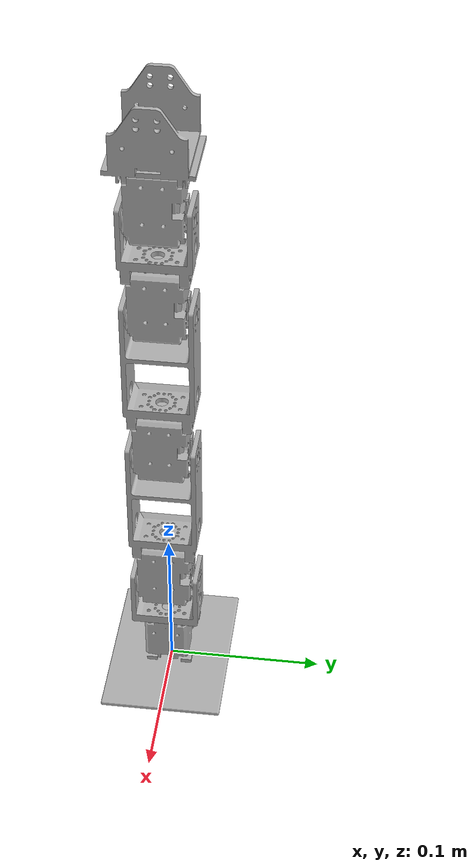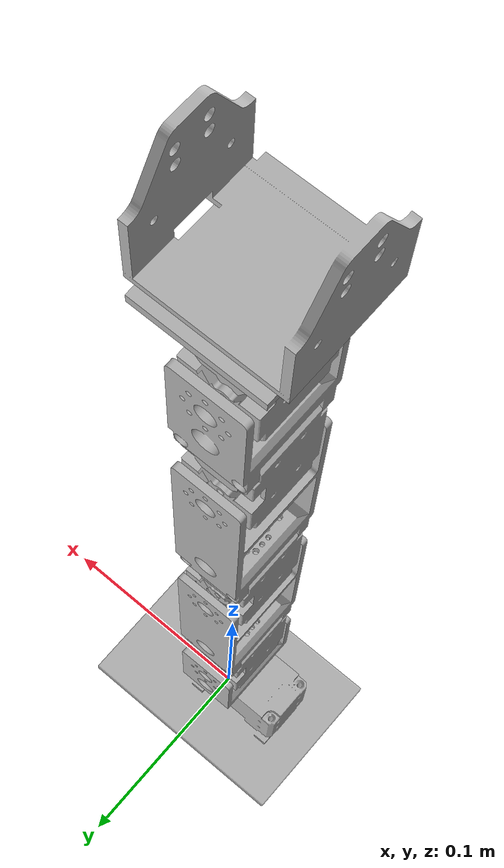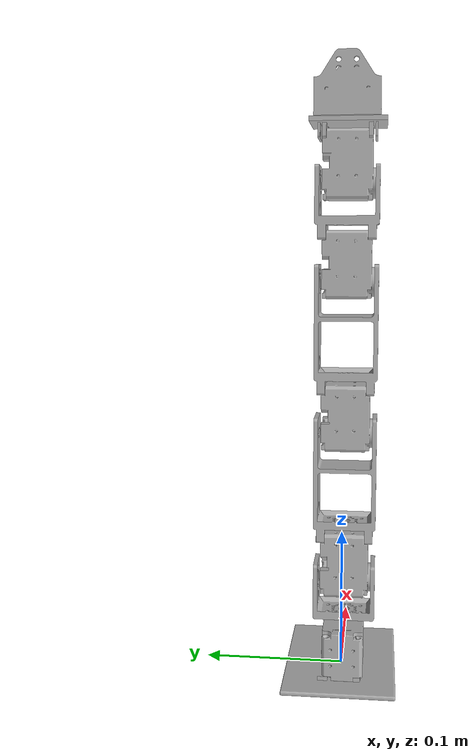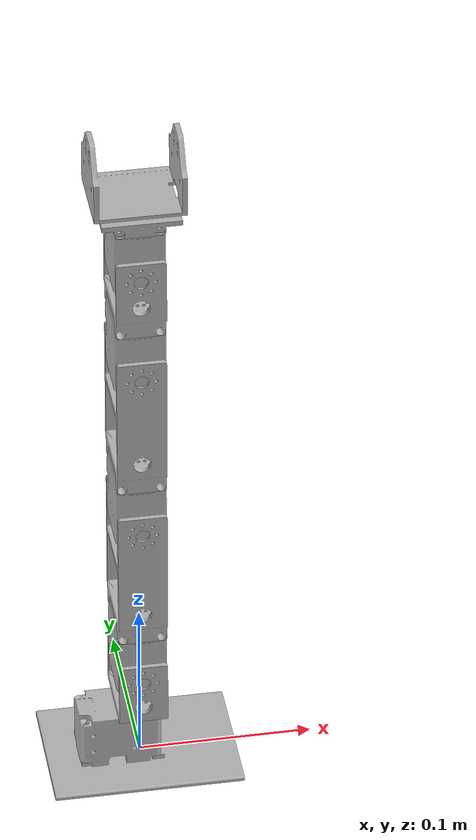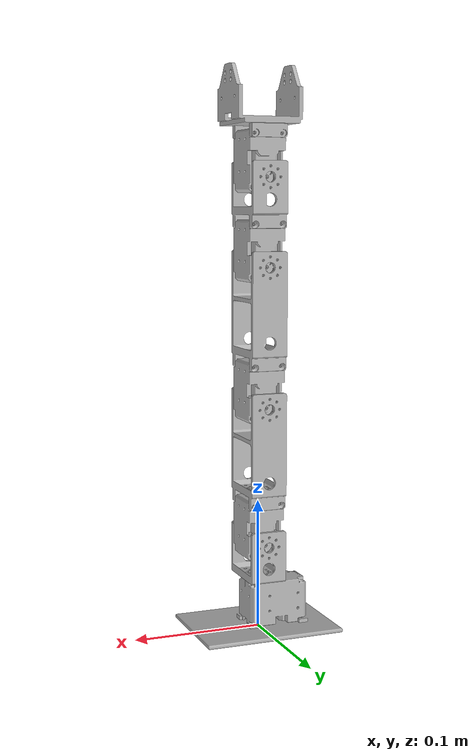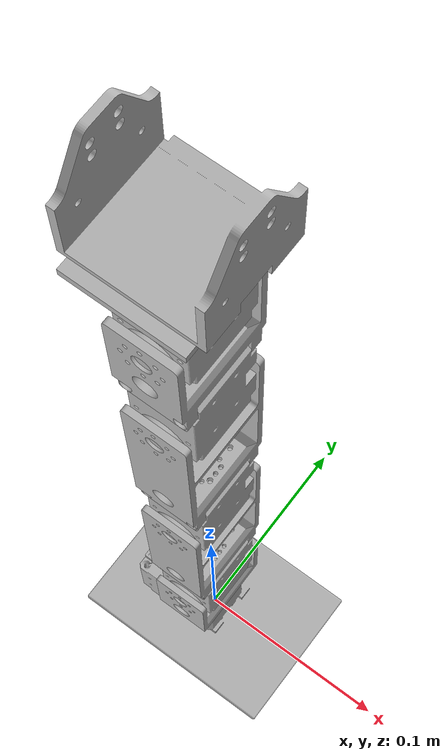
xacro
<?xml version="1.0" ?>
<robot name="brazo1" xmlns:xacro="http://www.ros.org/wiki/xacro">

<xacro:include filename="$(find brazo1_description)/urdf/materials.xacro" />
<xacro:include filename="$(find brazo1_description)/urdf/brazo1.trans" />
<xacro:include filename="$(find brazo1_description)/urdf/brazo1.gazebo" />
<link name="base_link">
  <inertial>
    <origin xyz="-0.00011991811279893809 -5.093370845094053e-12 0.001556381658005178" rpy="0 0 0"/>
    <mass value="0.02773810830156498"/>
    <inertia ixx="1.4e-05" iyy="2.8e-05" izz="4.2e-05" ixy="-0.0" iyz="0.0" ixz="0.0"/>
  </inertial>
  <visual>
    <origin xyz="0 0 0" rpy="0 0 0"/>
    <geometry>
      <mesh filename="package://brazo1_description/meshes/base_link.stl" scale="0.001 0.001 0.001"/>
    </geometry>
    <material name="silver"/>
  </visual>
  <collision>
    <origin xyz="0 0 0" rpy="0 0 0"/>
    <geometry>
      <mesh filename="package://brazo1_description/meshes/base_link.stl" scale="0.001 0.001 0.001"/>
    </geometry>
  </collision>
</link>

<link name="hombro_1">
  <inertial>
    <origin xyz="-1.2244676667744203e-07 4.5020142357002704e-07 0.013416963422075212" rpy="0 0 0"/>
    <mass value="0.009658212401008478"/>
    <inertia ixx="5e-06" iyy="2e-06" izz="4e-06" ixy="0.0" iyz="0.0" ixz="0.0"/>
  </inertial>
  <visual>
    <origin xyz="0.001206 0.002133 -0.0391" rpy="0 0 0"/>
    <geometry>
      <mesh filename="package://brazo1_description/meshes/hombro_1.stl" scale="0.001 0.001 0.001"/>
    </geometry>
    <material name="silver"/>
  </visual>
  <collision>
    <origin xyz="0.001206 0.002133 -0.0391" rpy="0 0 0"/>
    <geometry>
      <mesh filename="package://brazo1_description/meshes/hombro_1.stl" scale="0.001 0.001 0.001"/>
    </geometry>
  </collision>
</link>

<link name="servo_hombro_1">
  <inertial>
    <origin xyz="8.873296505409155e-06 0.017878472671292236 0.011948573933304327" rpy="0 0 0"/>
    <mass value="0.11073237060446267"/>
    <inertia ixx="3e-05" iyy="2.7e-05" izz="1.7e-05" ixy="0.0" iyz="-1e-06" ixz="0.0"/>
  </inertial>
  <visual>
    <origin xyz="0.001206 0.021133 -0.0671" rpy="0 0 0"/>
    <geometry>
      <mesh filename="package://brazo1_description/meshes/servo_hombro_1.stl" scale="0.001 0.001 0.001"/>
    </geometry>
    <material name="silver"/>
  </visual>
  <collision>
    <origin xyz="0.001206 0.021133 -0.0671" rpy="0 0 0"/>
    <geometry>
      <mesh filename="package://brazo1_description/meshes/servo_hombro_1.stl" scale="0.001 0.001 0.001"/>
    </geometry>
  </collision>
</link>

<link name="codo1_1">
  <inertial>
    <origin xyz="-0.011000122446849003 -0.014199549796443282 0.03710003743924245" rpy="0 0 0"/>
    <mass value="0.022482239588632037"/>
    <inertia ixx="2.1e-05" iyy="1.6e-05" izz="9e-06" ixy="0.0" iyz="0.0" ixz="-0.0"/>
  </inertial>
  <visual>
    <origin xyz="-0.009794 -0.012067 -0.0991" rpy="0 0 0"/>
    <geometry>
      <mesh filename="package://brazo1_description/meshes/codo1_1.stl" scale="0.001 0.001 0.001"/>
    </geometry>
    <material name="silver"/>
  </visual>
  <collision>
    <origin xyz="-0.009794 -0.012067 -0.0991" rpy="0 0 0"/>
    <geometry>
      <mesh filename="package://brazo1_description/meshes/codo1_1.stl" scale="0.001 0.001 0.001"/>
    </geometry>
  </collision>
</link>

<link name="servo_codo1_1">
  <inertial>
    <origin xyz="8.873296505396795e-06 0.017878472671292264 0.011948573933304313" rpy="0 0 0"/>
    <mass value="0.11073237060446267"/>
    <inertia ixx="3e-05" iyy="2.7e-05" izz="1.7e-05" ixy="0.0" iyz="-1e-06" ixz="0.0"/>
  </inertial>
  <visual>
    <origin xyz="0.001206 0.021133 -0.1741" rpy="0 0 0"/>
    <geometry>
      <mesh filename="package://brazo1_description/meshes/servo_codo1_1.stl" scale="0.001 0.001 0.001"/>
    </geometry>
    <material name="silver"/>
  </visual>
  <collision>
    <origin xyz="0.001206 0.021133 -0.1741" rpy="0 0 0"/>
    <geometry>
      <mesh filename="package://brazo1_description/meshes/servo_codo1_1.stl" scale="0.001 0.001 0.001"/>
    </geometry>
  </collision>
</link>

<link name="codo2_1">
  <inertial>
    <origin xyz="-0.011000122446849041 -0.014199549796443264 0.037100037439242534" rpy="0 0 0"/>
    <mass value="0.02248223958863206"/>
    <inertia ixx="2.1e-05" iyy="1.6e-05" izz="9e-06" ixy="0.0" iyz="0.0" ixz="-0.0"/>
  </inertial>
  <visual>
    <origin xyz="-0.009794 -0.012067 -0.2061" rpy="0 0 0"/>
    <geometry>
      <mesh filename="package://brazo1_description/meshes/codo2_1.stl" scale="0.001 0.001 0.001"/>
    </geometry>
    <material name="silver"/>
  </visual>
  <collision>
    <origin xyz="-0.009794 -0.012067 -0.2061" rpy="0 0 0"/>
    <geometry>
      <mesh filename="package://brazo1_description/meshes/codo2_1.stl" scale="0.001 0.001 0.001"/>
    </geometry>
  </collision>
</link>

<link name="servo_codo2_1">
  <inertial>
    <origin xyz="8.873296505272328e-06 0.01787847267129226 0.011948573933304452" rpy="0 0 0"/>
    <mass value="0.11073237060446267"/>
    <inertia ixx="3e-05" iyy="2.7e-05" izz="1.7e-05" ixy="0.0" iyz="-1e-06" ixz="0.0"/>
  </inertial>
  <visual>
    <origin xyz="0.001206 0.021133 -0.2811" rpy="0 0 0"/>
    <geometry>
      <mesh filename="package://brazo1_description/meshes/servo_codo2_1.stl" scale="0.001 0.001 0.001"/>
    </geometry>
    <material name="silver"/>
  </visual>
  <collision>
    <origin xyz="0.001206 0.021133 -0.2811" rpy="0 0 0"/>
    <geometry>
      <mesh filename="package://brazo1_description/meshes/servo_codo2_1.stl" scale="0.001 0.001 0.001"/>
    </geometry>
  </collision>
</link>

<link name="servo_muneca_1">
  <inertial>
    <origin xyz="8.873296504273561e-06 0.0178784726712921 0.01194857393330373" rpy="0 0 0"/>
    <mass value="0.11073237060446267"/>
    <inertia ixx="3e-05" iyy="2.7e-05" izz="1.7e-05" ixy="0.0" iyz="-1e-06" ixz="0.0"/>
  </inertial>
  <visual>
    <origin xyz="0.001206 0.021133 -0.3481" rpy="0 0 0"/>
    <geometry>
      <mesh filename="package://brazo1_description/meshes/servo_muneca_1.stl" scale="0.001 0.001 0.001"/>
    </geometry>
    <material name="silver"/>
  </visual>
  <collision>
    <origin xyz="0.001206 0.021133 -0.3481" rpy="0 0 0"/>
    <geometry>
      <mesh filename="package://brazo1_description/meshes/servo_muneca_1.stl" scale="0.001 0.001 0.001"/>
    </geometry>
  </collision>
</link>

<link name="muneca_1">
  <inertial>
    <origin xyz="-0.011000122446747808 -0.014199549798606957 0.015311885482131193" rpy="0 0 0"/>
    <mass value="0.014903690357992803"/>
    <inertia ixx="7e-06" iyy="4e-06" izz="5e-06" ixy="0.0" iyz="-0.0" ixz="0.0"/>
  </inertial>
  <visual>
    <origin xyz="-0.009794 -0.012067 -0.3131" rpy="0 0 0"/>
    <geometry>
      <mesh filename="package://brazo1_description/meshes/muneca_1.stl" scale="0.001 0.001 0.001"/>
    </geometry>
    <material name="silver"/>
  </visual>
  <collision>
    <origin xyz="-0.009794 -0.012067 -0.3131" rpy="0 0 0"/>
    <geometry>
      <mesh filename="package://brazo1_description/meshes/muneca_1.stl" scale="0.001 0.001 0.001"/>
    </geometry>
  </collision>
</link>

<link name="garra_1">
  <inertial>
    <origin xyz="0.010667940105435869 0.014030699687172974 0.016385147594230376" rpy="0 0 0"/>
    <mass value="0.021727709860775293"/>
    <inertia ixx="7e-06" iyy="1e-05" izz="1.1e-05" ixy="0.0" iyz="-0.0" ixz="-0.0"/>
  </inertial>
  <visual>
    <origin xyz="0.012206 0.016333 -0.3801" rpy="0 0 0"/>
    <geometry>
      <mesh filename="package://brazo1_description/meshes/garra_1.stl" scale="0.001 0.001 0.001"/>
    </geometry>
    <material name="silver"/>
  </visual>
  <collision>
    <origin xyz="0.012206 0.016333 -0.3801" rpy="0 0 0"/>
    <geometry>
      <mesh filename="package://brazo1_description/meshes/garra_1.stl" scale="0.001 0.001 0.001"/>
    </geometry>
  </collision>
</link>

<link name="servo_base_1">
  <inertial>
    <origin xyz="0.01884530361992569 0.00887644594470139 0.015321977530133833" rpy="0 0 0"/>
    <mass value="0.11073237060446267"/>
    <inertia ixx="1.7e-05" iyy="3e-05" izz="2.7e-05" ixy="-0.0" iyz="-0.0" ixz="-1e-06"/>
  </inertial>
  <visual>
    <origin xyz="0.032 0.011 -0.0059" rpy="0 0 0"/>
    <geometry>
      <mesh filename="package://brazo1_description/meshes/servo_base_1.stl" scale="0.001 0.001 0.001"/>
    </geometry>
    <material name="silver"/>
  </visual>
  <collision>
    <origin xyz="0.032 0.011 -0.0059" rpy="0 0 0"/>
    <geometry>
      <mesh filename="package://brazo1_description/meshes/servo_base_1.stl" scale="0.001 0.001 0.001"/>
    </geometry>
  </collision>
</link>

<joint name="Revolute 4" type="continuous">
  <origin xyz="0.030794 0.008867 0.0332" rpy="0 0 0"/>
  <parent link="servo_base_1"/>
  <child link="hombro_1"/>
  <axis xyz="-0.0 -0.0 1.0"/>
</joint>

<joint name="Revolute 5" type="continuous">
  <origin xyz="0.0 -0.019 0.028" rpy="0 0 0"/>
  <parent link="hombro_1"/>
  <child link="servo_hombro_1"/>
  <axis xyz="0.0 1.0 0.0"/>
</joint>

<joint name="Rigid 15" type="fixed">
  <origin xyz="0.011 0.0332 0.032" rpy="0 0 0"/>
  <parent link="servo_hombro_1"/>
  <child link="codo1_1"/>
</joint>

<joint name="Revolute 16" type="continuous">
  <origin xyz="-0.011 -0.0332 0.075" rpy="0 0 0"/>
  <parent link="codo1_1"/>
  <child link="servo_codo1_1"/>
  <axis xyz="-0.0 -1.0 -0.0"/>
</joint>

<joint name="Rigid 17" type="fixed">
  <origin xyz="0.011 0.0332 0.032" rpy="0 0 0"/>
  <parent link="servo_codo1_1"/>
  <child link="codo2_1"/>
</joint>

<joint name="Revolute 18" type="continuous">
  <origin xyz="-0.011 -0.0332 0.075" rpy="0 0 0"/>
  <parent link="codo2_1"/>
  <child link="servo_codo2_1"/>
  <axis xyz="-0.0 -1.0 -0.0"/>
</joint>

<joint name="Revolute 38" type="continuous">
  <origin xyz="-0.011 -0.0332 0.035" rpy="0 0 0"/>
  <parent link="muneca_1"/>
  <child link="servo_muneca_1"/>
  <axis xyz="-0.0 -1.0 -0.0"/>
</joint>

<joint name="Rigid 39" type="fixed">
  <origin xyz="0.011 0.0332 0.032" rpy="0 0 0"/>
  <parent link="servo_codo2_1"/>
  <child link="muneca_1"/>
</joint>

<joint name="Rigid 40" type="fixed">
  <origin xyz="-0.011 0.0048 0.032" rpy="0 0 0"/>
  <parent link="servo_muneca_1"/>
  <child link="garra_1"/>
</joint>

<joint name="Rigid 55" type="fixed">
  <origin xyz="-0.032 -0.011 0.0059" rpy="0 0 0"/>
  <parent link="base_link"/>
  <child link="servo_base_1"/>
</joint>

</robot>

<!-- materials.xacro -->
<robot name="brazo1" xmlns:xacro="http://www.ros.org/wiki/xacro" >

<material name="silver">
  <color rgba="0.700 0.700 0.700 1.000"/>
</material>

</robot>

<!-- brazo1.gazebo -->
<robot name="brazo1" xmlns:xacro="http://www.ros.org/wiki/xacro" >

<xacro:property name="body_color" value="Gazebo/Silver" />

<gazebo>
  <plugin name="control" filename="libgazebo_ros_control.so"/>
</gazebo>
<gazebo reference="base_link">
  <material>${body_color}</material>
  <mu1>0.2</mu1>
  <mu2>0.2</mu2>
  <selfCollide>true</selfCollide>
  <gravity>true</gravity>
</gazebo>

<gazebo reference="hombro_1">
  <material>${body_color}</material>
  <mu1>0.2</mu1>
  <mu2>0.2</mu2>
  <selfCollide>true</selfCollide>
</gazebo>

<gazebo reference="servo_hombro_1">
  <material>${body_color}</material>
  <mu1>0.2</mu1>
  <mu2>0.2</mu2>
  <selfCollide>true</selfCollide>
</gazebo>

<gazebo reference="codo1_1">
  <material>${body_color}</material>
  <mu1>0.2</mu1>
  <mu2>0.2</mu2>
  <selfCollide>true</selfCollide>
</gazebo>

<gazebo reference="servo_codo1_1">
  <material>${body_color}</material>
  <mu1>0.2</mu1>
  <mu2>0.2</mu2>
  <selfCollide>true</selfCollide>
</gazebo>

<gazebo reference="codo2_1">
  <material>${body_color}</material>
  <mu1>0.2</mu1>
  <mu2>0.2</mu2>
  <selfCollide>true</selfCollide>
</gazebo>

<gazebo reference="servo_codo2_1">
  <material>${body_color}</material>
  <mu1>0.2</mu1>
  <mu2>0.2</mu2>
  <selfCollide>true</selfCollide>
</gazebo>

<gazebo reference="servo_muneca_1">
  <material>${body_color}</material>
  <mu1>0.2</mu1>
  <mu2>0.2</mu2>
  <selfCollide>true</selfCollide>
</gazebo>

<gazebo reference="muneca_1">
  <material>${body_color}</material>
  <mu1>0.2</mu1>
  <mu2>0.2</mu2>
  <selfCollide>true</selfCollide>
</gazebo>

<gazebo reference="garra_1">
  <material>${body_color}</material>
  <mu1>0.2</mu1>
  <mu2>0.2</mu2>
  <selfCollide>true</selfCollide>
</gazebo>

<gazebo reference="servo_base_1">
  <material>${body_color}</material>
  <mu1>0.2</mu1>
  <mu2>0.2</mu2>
  <selfCollide>true</selfCollide>
</gazebo>

</robot>
